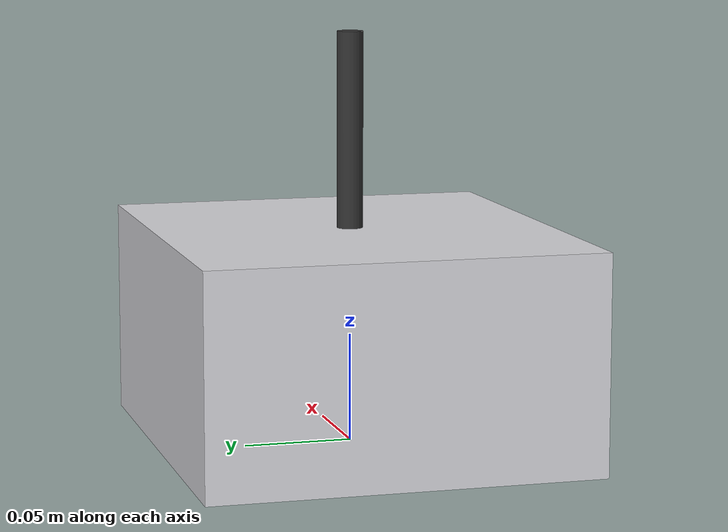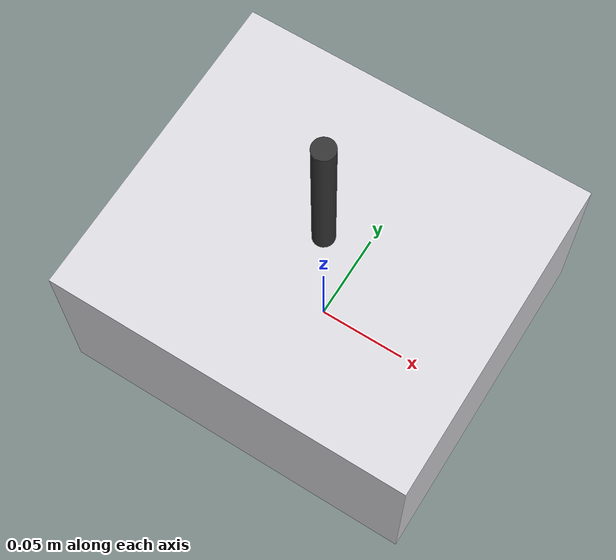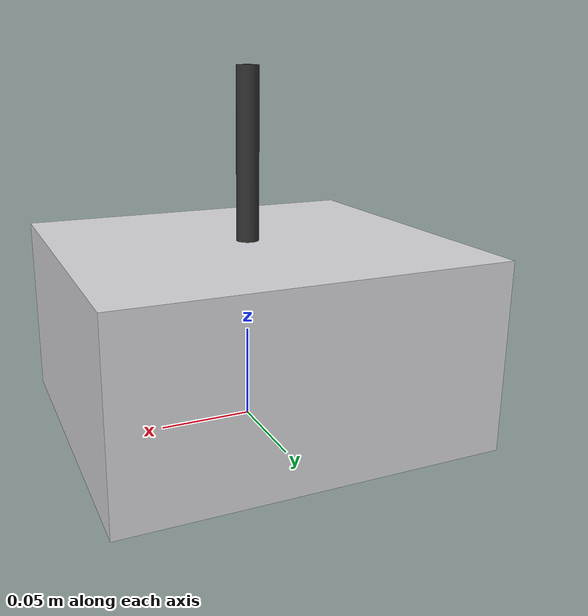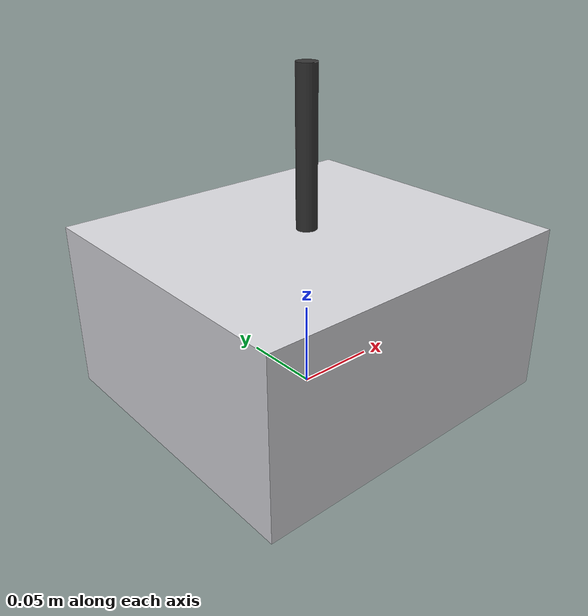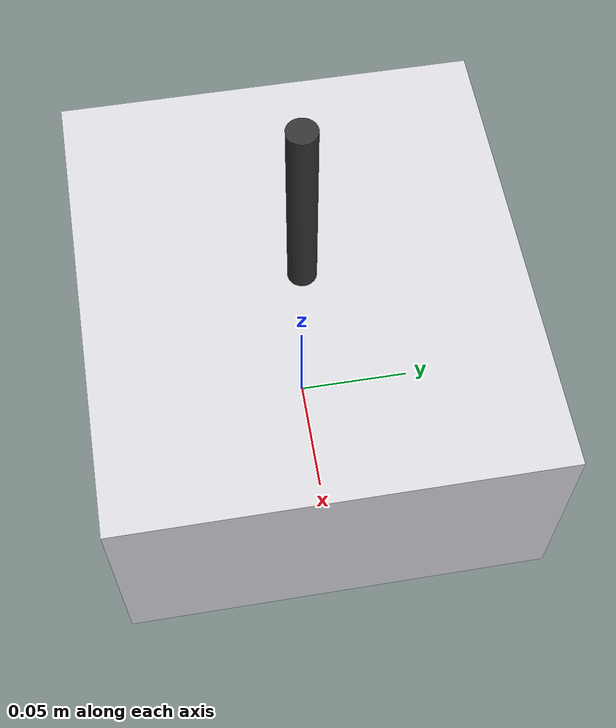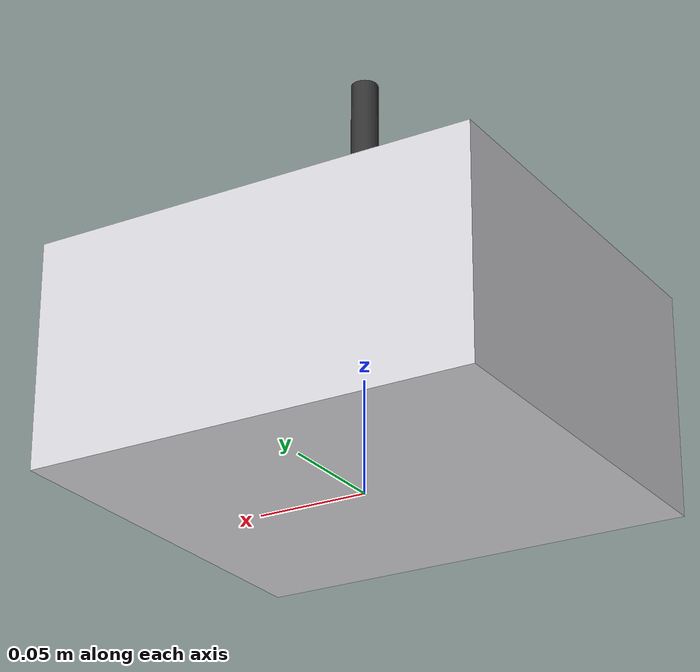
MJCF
<?xml version="1.0" encoding="utf-8"?>
<mujoco model="dna_extraction_robot">
  <compiler angle="radian" autolimits="true"/>
  <default>
    <default class="body"><geom contype="1" conaffinity="1"/></default>
  </default>
  <worldbody>
    <body name="base">
      <geom type="box" size="0.1 0.09 0.05" pos="0 0 0.05" rgba="0.85 0.85 0.87 1" class="body"/>
      <geom type="box" size="0.03 0.0045 0.0125" pos="-0.05 -0.081 0.07500000000000001" rgba="0.9 0.7 0.1 1" class="body"/>
      <body name="pipette_head" pos="0 0 0.14">
        <joint name="pipette_head_joint" type="slide" axis="0 0 1" range="-0.05 0" damping="1.0" frictionloss="0.3"/>
  <geom type="cylinder" size="0.006 0.05" pos="0 0 0" rgba="0.2 0.2 0.2 1" class="body"/>
      </body>
    </body>
  </worldbody>
</mujoco>
